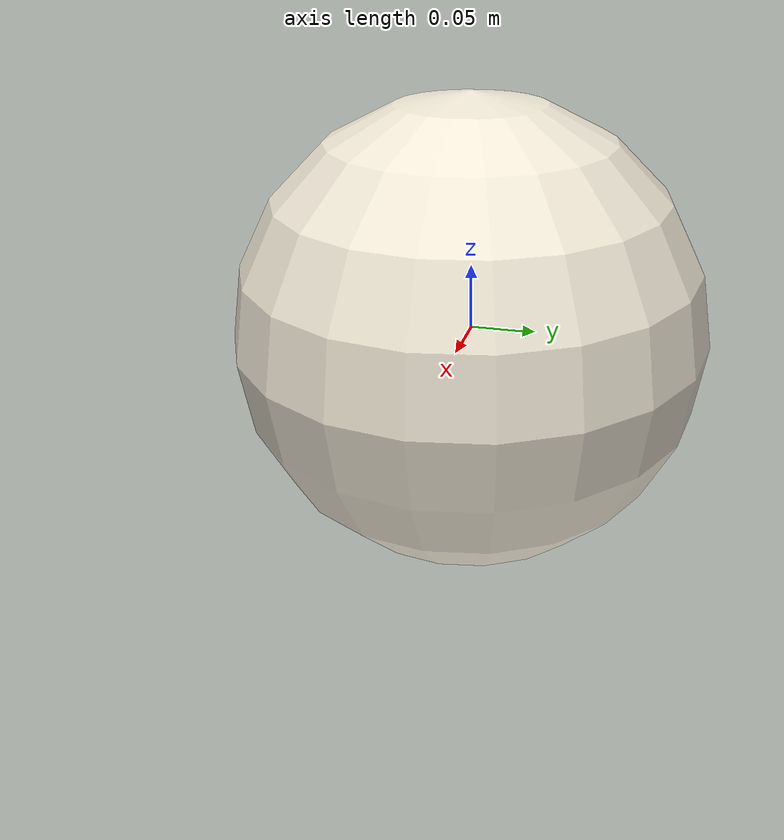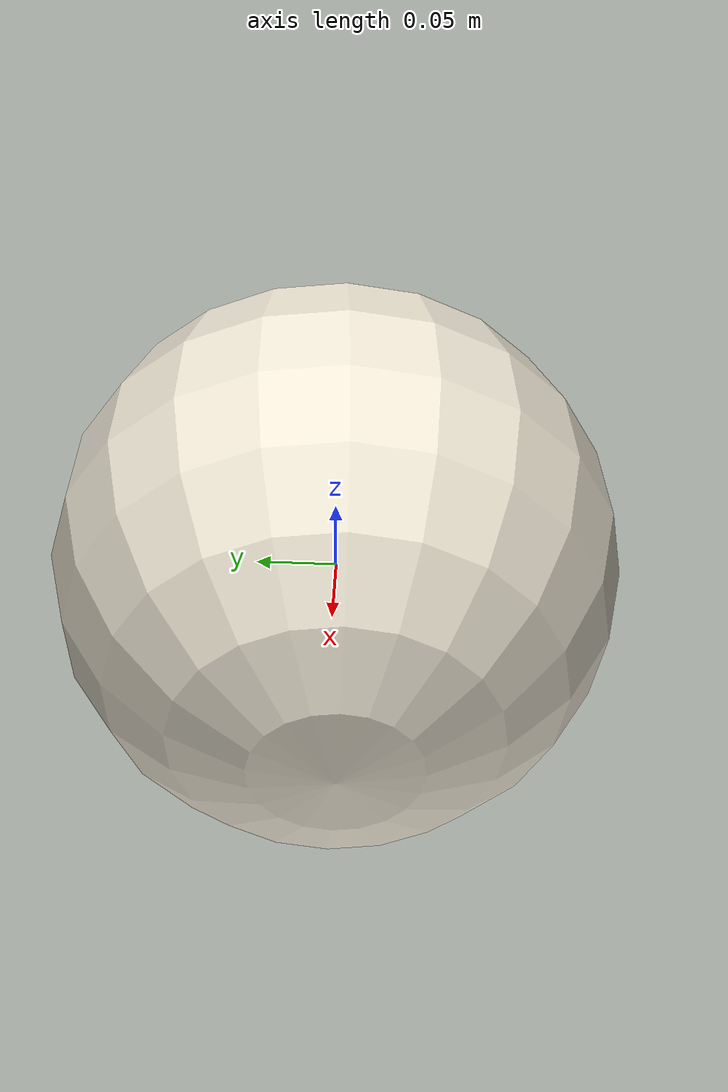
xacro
<?xml version="1.0"?>
<robot name="bb8" xmlns:xacro="http://www.ros.org/wiki/xacro">

  <xacro:property name="shell_radius" value="0.18"/>
  <xacro:property name="shell_mass" value="1.20"/>
  <xacro:property name="shell_inertia" value="0.015552"/>
  <xacro:property name="ballast_mass" value="0.45"/>
  <xacro:property name="ballast_inertia" value="0.00085"/>

  <material name="bb8_shell_white">
    <color rgba="0.94 0.91 0.84 1.0"/>
  </material>

  <material name="bb8_ballast_dark">
    <color rgba="0.08 0.08 0.09 0.55"/>
  </material>

  <link name="base_link"/>

  <joint name="base_to_shell" type="fixed">
    <parent link="base_link"/>
    <child link="bb8_shell"/>
    <origin xyz="0 0 0" rpy="0 0 0"/>
  </joint>

  <link name="bb8_shell">
    <visual>
      <geometry>
        <sphere radius="${shell_radius}"/>
      </geometry>
      <material name="bb8_shell_white"/>
    </visual>
    <collision>
      <geometry>
        <sphere radius="${shell_radius}"/>
      </geometry>
    </collision>
    <inertial>
      <mass value="${shell_mass}"/>
      <inertia
        ixx="${shell_inertia}" ixy="0" ixz="0"
        iyy="${shell_inertia}" iyz="0"
        izz="${shell_inertia}"/>
    </inertial>
  </link>

  <joint name="shell_to_internal_ballast" type="fixed">
    <parent link="bb8_shell"/>
    <child link="internal_ballast"/>
    <origin xyz="0 0 -0.07" rpy="0 0 0"/>
  </joint>

  <link name="internal_ballast">
    <visual>
      <geometry>
        <box size="0.12 0.08 0.04"/>
      </geometry>
      <material name="bb8_ballast_dark"/>
    </visual>
    <inertial>
      <mass value="${ballast_mass}"/>
      <inertia
        ixx="${ballast_inertia}" ixy="0" ixz="0"
        iyy="${ballast_inertia}" iyz="0"
        izz="${ballast_inertia}"/>
    </inertial>
  </link>

  <joint name="shell_to_imu" type="fixed">
    <parent link="bb8_shell"/>
    <child link="imu_link"/>
    <origin xyz="0 0 0" rpy="0 0 0"/>
  </joint>

  <link name="imu_link"/>

  <joint name="shell_to_camera" type="fixed">
    <parent link="bb8_shell"/>
    <child link="camera_link"/>
    <origin xyz="0.10 0 0.10" rpy="0 0 0"/>
  </joint>

  <link name="camera_link"/>
</robot>
